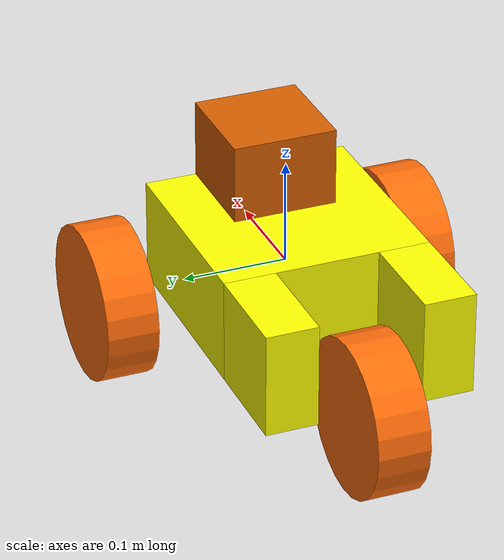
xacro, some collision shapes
<?xml version='1.0'?>

<robot name="udacity_bot" xmlns:xacro="http://www.ros.org/wiki/xacro">
  <xacro:include filename="$(find udacity_bot)/urdf/udacity_bot.gazebo" />

  <material name="orange">
    <color rgba="${255/255} ${108/255} ${10/255} 1.0"/>
  </material>
  <material name="white">
    <color rgba="${255/255} ${255/255} ${255/255} 1.0"/>
  </material>
  <material name="red">
    <color rgba="${255/255} ${0/255} ${0/255} 1.0"/>
  </material>
  <material name="yellow">
    <color rgba="${255/255} ${255/255} ${0/255} 1.0"/>
  </material>

  <link name="robot_footprint"></link>

  <joint name="robot_footprint_joint" type="fixed">
    <origin xyz="0 0 0" rpy="0 0 0" />
    <parent link="robot_footprint"/>
    <child link="chassis" />
  </joint>

  <link name='chassis'>
    <pose>0 0 0.1 0 0 0</pose>

    <inertial>
      <mass value="15.0"/>
      <origin xyz="0.0 0 0" rpy=" 0 0 0"/>
      <inertia
          ixx="0.1" ixy="0" ixz="0"
          iyy="0.1" iyz="0"
          izz="0.1"
      />
    </inertial>

    <collision name='collision'>
      <origin xyz="0 0 0" rpy=" 0 0 0"/>
      <geometry>
        <box size=".2 .2 .1"/>
      </geometry>
    </collision>

    <visual name='chassis_visual'>
      <origin xyz="0 0 0" rpy=" 0 0 0"/>
      <geometry>
        <box size=".2 .2 .1"/>
      </geometry>
      <material name="yellow"/>
    </visual>

    <visual name='chassis_rightback'>
      <origin xyz="-0.15 0.075 0" rpy=" 0 0 0"/>
      <geometry>
        <box size=".1 .05 .1"/>
      </geometry>
      <material name="yellow"/>
    </visual>

    <collision name='collision_rightback'>
      <origin xyz="-0.15 0.075 0" rpy=" 0 0 0"/>
      <geometry>
        <box size=".1 .05 .1"/>
      </geometry>
      <material name="yellow"/>
    </collision>

    <visual name='chassis_leftback'>
      <origin xyz="-0.15 -0.075 0" rpy=" 0 0 0"/>
      <geometry>
        <box size=".1 .05 .1"/>
      </geometry>
      <material name="yellow"/>
    </visual>

    <collision name='chassis_leftback'>
      <origin xyz="-0.15 -0.075 0" rpy=" 0 0 0"/>
      <geometry>
        <box size=".1 .05 .1"/>
      </geometry>
      <material name="yellow"/>
    </collision>

    <inertial>
      <mass value="5.0"/>
      <origin xyz="0 0 0" rpy="0 1.5707 1.5707"/>
      <inertia
          ixx="0.01" ixy="0" ixz="0"
          iyy="0.01" iyz="0"
          izz="0.01"
      />
    </inertial>

    <collision name='middle_wheel_collision'>
       <origin xyz="-0.2 0 -0.05" rpy="0 1.5707 1.5707"/>
      <geometry>
       <cylinder radius="0.075" length="0.05"/>
      </geometry>
	<surface>
	  <friction>
	    <ode>
	      <mu>0</mu>
              <mu2>0</mu2>
              <slip1>1.0</slip1>
              <slip2>1.0</slip2>
            </ode>
          </friction>
        </surface>
    </collision>

    <visual name='middle_wheel_visual'>
       <origin xyz="-0.2 0 -0.05" rpy="0 1.5707 1.5707"/>
      <geometry>
       <cylinder radius="0.075" length="0.05"/>
      </geometry>
      <material name="orange"/>
    </visual>

  </link>

<link name="left_wheel">

    <inertial>
      <mass value="5.0"/>
      <origin xyz="0 0 0" rpy="0 1.5707 1.5707"/>
      <inertia
          ixx="0.1" ixy="0" ixz="0"
          iyy="0.1" iyz="0"
          izz="0.1"
      />
    </inertial>

    <collision name='left_wheel_collision'>
       <origin xyz="0 0 0" rpy="0 1.5707 1.5707"/>
      <geometry>
       <cylinder radius="0.075" length="0.05"/>
      </geometry>
    </collision>

    <visual name='left_wheel_visual'>
       <origin xyz="0 0 0" rpy="0 1.5707 1.5707"/>
      <geometry>
       <cylinder radius="0.075" length="0.05"/>
      </geometry>
      <material name="orange"/>
    </visual>

  </link>

 <joint type="continuous" name="left_wheel_hinge">
    <origin xyz="0.075 0.15 -0.05" rpy="0 0 0"/>
    <child link="left_wheel"/>
    <parent link="chassis"/>
    <axis xyz="0 1 0" rpy="0 0 0"/>
    <limit effort="10000" velocity="1000"/>
    <dynamics damping="1.0" friction="1.0"/>
  </joint>

<link name="right_wheel">

    <inertial>
      <mass value="5.0"/>
      <origin xyz="0 0 0" rpy="0 1.5707 1.5707"/>
      <inertia
          ixx="0.1" ixy="0" ixz="0"
          iyy="0.1" iyz="0"
          izz="0.1"
      />
    </inertial>

    <collision name='right_wheel_collision'>
       <origin xyz="0 0 0" rpy="0 1.5707 1.5707"/>
      <geometry>
       <cylinder radius="0.075" length="0.05"/>
      </geometry>
    </collision>

    <visual name='right_wheel_visual'>
       <origin xyz="0 0 0" rpy="0 1.5707 1.5707"/>
      <geometry>
       <cylinder radius="0.075" length="0.05"/>
      </geometry>
      <material name="orange"/>
    </visual>

  </link>

 <joint type="continuous" name="right_wheel_hinge">
    <origin xyz="0.075 -0.15 -0.05" rpy="0 0 0"/>
    <child link="right_wheel"/>
    <parent link="chassis"/>
    <axis xyz="0 1 0" rpy="0 0 0"/>
    <limit effort="10000" velocity="1000"/>
    <dynamics damping="1.0" friction="1.0"/>
  </joint>

<link name="camera">

    <inertial>
      <mass value="0.1"/>
      <origin xyz="0 0 0" rpy="0 0 0"/>
      <inertia
          ixx="1e-6" ixy="0" ixz="0"
          iyy="1e-6" iyz="0"
          izz="1e-6"
      />
    </inertial>

    <collision name='camera_collision'>
       <origin xyz="0 0 0" rpy="0 0 0"/>
      <geometry>
       <box size=".05 .05 .05"/>
      </geometry>
    </collision>

    <visual name='camera_visual'>
       <origin xyz="0 0 0" rpy="0 0 0"/>
      <geometry>
       <box size=".05 .05 .05"/>
      </geometry>
      <material name="red"/>
    </visual>

  </link>

 <joint type="fixed" name="camera_joint">
    <origin xyz="0.1 0 0.0" rpy="0 0 0"/>
    <child link="camera"/>
    <parent link="chassis"/>
    <axis xyz="0 0 0" rpy="0 0 0"/>
  </joint>

<link name="hokuyo">

    <inertial>
      <mass value="0.1"/>
      <origin xyz="0 0 0" rpy="0 0 0"/>
      <inertia
          ixx="1e-6" ixy="0" ixz="0"
          iyy="1e-6" iyz="0"
          izz="1e-6"
      />
    </inertial>

    <collision name='hokuyo_collision'>
       <origin xyz="0 0 0" rpy="0 0 0"/>
      <geometry>
       <box size=".1 .1 .1"/>
      </geometry>
    </collision>

    <visual name='hokuyo_visual'>
       <origin xyz="0 0 0" rpy="0 0 0"/>
      <geometry>
        <!--box size=".1 .1 .1"/-->
        <mesh filename="package://udacity_bot/meshes/hokuyo.dae" />
      </geometry>
    </visual>

  </link>

 <joint type="fixed" name="hokuyo_joint">
    <origin xyz="0.05 0 0.075" rpy="0 0 0"/>
    <child link="hokuyo"/>
    <parent link="chassis"/>
    <axis xyz="0 0 0" rpy="0 0 0"/>
  </joint>

</robot>
